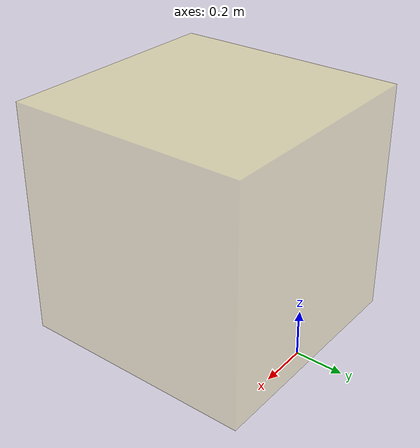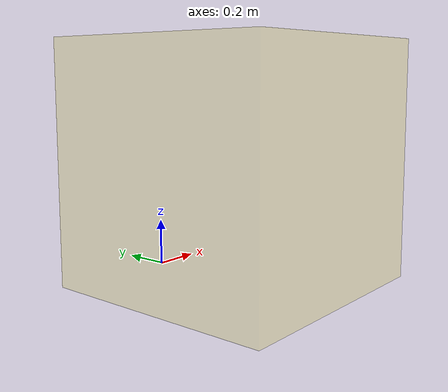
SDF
<?xml version='1.0'?>
<sdf version='1.5'>
  <model name='RegionEventBox'>
	  <static>1</static>
      <pose>0 -0.435734 0.5 0 -0 0</pose>
      <link name='link'>
        <inertial>
          <mass>1</mass>
          <inertia>
            <ixx>1</ixx>
            <ixy>0</ixy>
            <ixz>0</ixz>
            <iyy>1</iyy>
            <iyz>0</iyz>
            <izz>1</izz>
          </inertia>
        </inertial>
        <visual name='visual'>
		  <transparency>0.75</transparency>
          <geometry>
            <box>
              <size>1 1 1</size>
            </box>
          </geometry>
          <material>
            <script>
              <uri>file://media/materials/scripts/gazebo.material</uri>
              <name>Gazebo/Yellow</name>
            </script>
          </material>
        </visual>
        <self_collide>0</self_collide>
        <kinematic>0</kinematic>
        <gravity>1</gravity>
      </link>
	  <plugin name="region_event_box" filename="libRegionEventBoxPlugin.so"/>
    </model>
</sdf>
